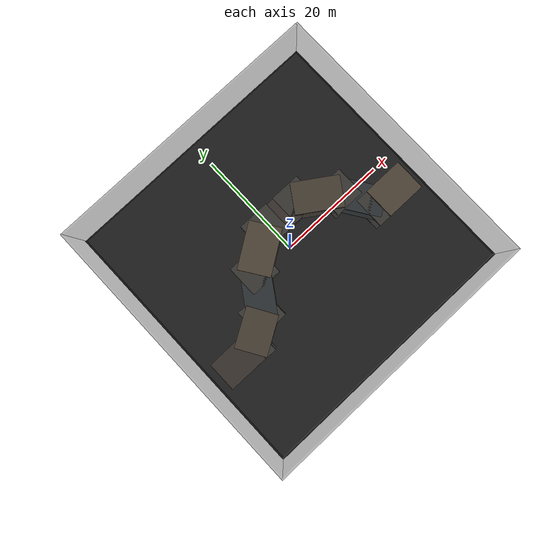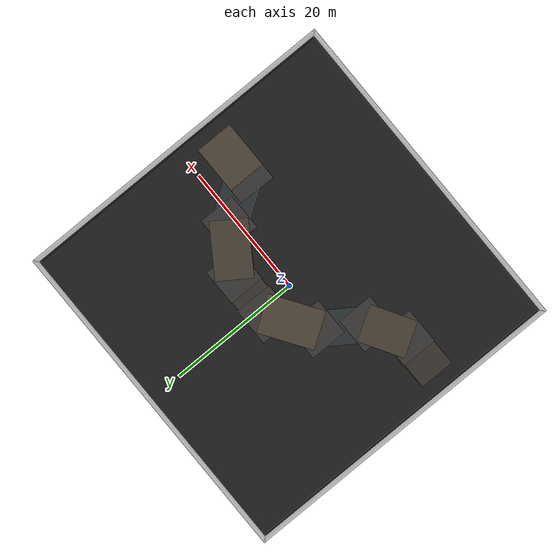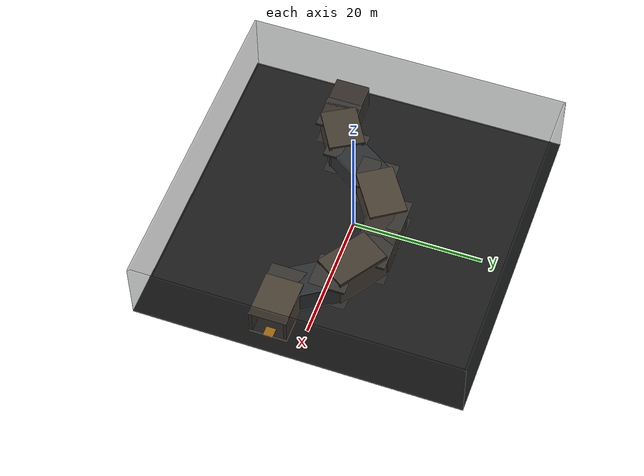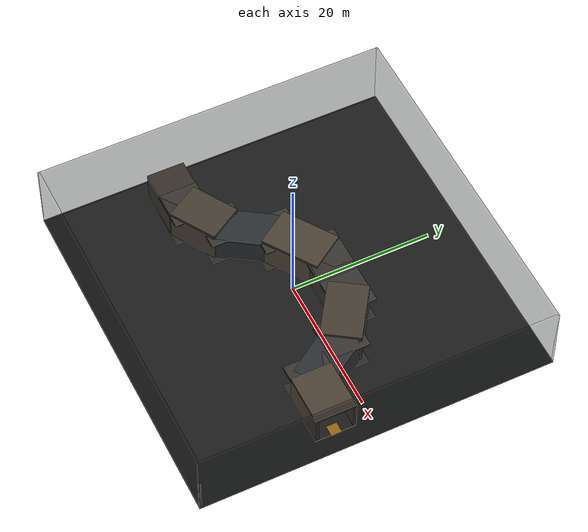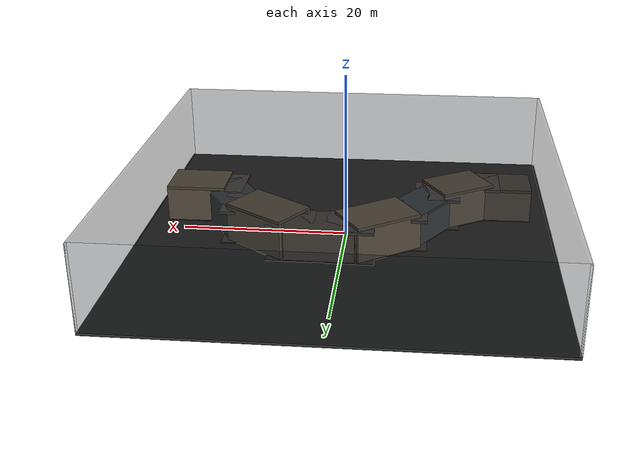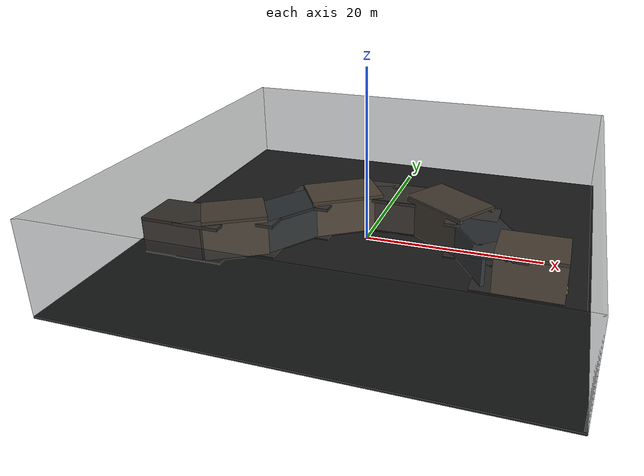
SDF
<?xml version='1.0'?>
<sdf version='1.6'>
  <world name='ego_curved_tunnel_50x50x10'>
    <gravity>0 0 -9.8066</gravity>
    <magnetic_field>6.0e-06 2.3e-05 -4.2e-05</magnetic_field>
    <atmosphere type='adiabatic'/>

    <physics name='px4_ode' default='1' type='ode'>
      <max_step_size>0.004</max_step_size>
      <real_time_factor>1.0</real_time_factor>
      <real_time_update_rate>250</real_time_update_rate>
      <ode>
        <solver><type>quick</type><iters>20</iters><sor>1.3</sor></solver>
        <constraints><cfm>0</cfm><erp>0.2</erp><contact_max_correcting_vel>100</contact_max_correcting_vel></constraints>
      </ode>
    </physics>

    <scene>
      <ambient>0.20 0.20 0.19 1</ambient>
      <background>0.08 0.09 0.10 1</background>
      <shadows>false</shadows>
      <grid>false</grid>
    </scene>

    <spherical_coordinates>
      <surface_model>EARTH_WGS84</surface_model>
      <latitude_deg>47.397742</latitude_deg>
      <longitude_deg>8.545594</longitude_deg>
      <elevation>488.0</elevation>
      <heading_deg>0</heading_deg>
    </spherical_coordinates>

    <include><uri>model://sun</uri></include>

    <model name='map_ground'>
      <static>true</static>
      <pose>0.000 0.000 -0.220 0 0 0</pose>
      <link name='link'>
        <collision name='collision'>
          <geometry><box><size>50.000 50.000 0.200</size></box></geometry>
        </collision>
        <visual name='visual'>
          <geometry><box><size>50.000 50.000 0.200</size></box></geometry>
          <material><ambient>0.100 0.100 0.100 1.000</ambient><diffuse>0.100 0.100 0.100 1.000</diffuse></material>
          <transparency>0.00</transparency>
        </visual>
      </link>
    </model>
    <model name='north_boundary'>
      <static>true</static>
      <pose>0.000 24.850 5.000 0 0 0</pose>
      <link name='link'>
        <collision name='collision'>
          <geometry><box><size>50.000 0.300 10.000</size></box></geometry>
        </collision>
        <visual name='visual'>
          <geometry><box><size>50.000 0.300 10.000</size></box></geometry>
          <material><ambient>0.120 0.130 0.140 1.000</ambient><diffuse>0.120 0.130 0.140 1.000</diffuse></material>
          <transparency>0.65</transparency>
        </visual>
      </link>
    </model>
    <model name='south_boundary'>
      <static>true</static>
      <pose>0.000 -24.850 5.000 0 0 0</pose>
      <link name='link'>
        <collision name='collision'>
          <geometry><box><size>50.000 0.300 10.000</size></box></geometry>
        </collision>
        <visual name='visual'>
          <geometry><box><size>50.000 0.300 10.000</size></box></geometry>
          <material><ambient>0.120 0.130 0.140 1.000</ambient><diffuse>0.120 0.130 0.140 1.000</diffuse></material>
          <transparency>0.65</transparency>
        </visual>
      </link>
    </model>
    <model name='east_boundary'>
      <static>true</static>
      <pose>24.850 0.000 5.000 0 0 0</pose>
      <link name='link'>
        <collision name='collision'>
          <geometry><box><size>0.300 50.000 10.000</size></box></geometry>
        </collision>
        <visual name='visual'>
          <geometry><box><size>0.300 50.000 10.000</size></box></geometry>
          <material><ambient>0.120 0.130 0.140 1.000</ambient><diffuse>0.120 0.130 0.140 1.000</diffuse></material>
          <transparency>0.65</transparency>
        </visual>
      </link>
    </model>
    <model name='west_boundary'>
      <static>true</static>
      <pose>-24.850 0.000 5.000 0 0 0</pose>
      <link name='link'>
        <collision name='collision'>
          <geometry><box><size>0.300 50.000 10.000</size></box></geometry>
        </collision>
        <visual name='visual'>
          <geometry><box><size>0.300 50.000 10.000</size></box></geometry>
          <material><ambient>0.120 0.130 0.140 1.000</ambient><diffuse>0.120 0.130 0.140 1.000</diffuse></material>
          <transparency>0.65</transparency>
        </visual>
      </link>
    </model>
    <model name='tunnel_spawn_pad'>
      <static>true</static>
      <pose>-22.000 -8.000 0.025 0 0 0</pose>
      <link name='link'>
        <collision name='collision'>
          <geometry><box><size>1.500 1.500 0.050</size></box></geometry>
        </collision>
        <visual name='visual'>
          <geometry><box><size>1.500 1.500 0.050</size></box></geometry>
          <material><ambient>0.100 0.340 0.780 1.000</ambient><diffuse>0.100 0.340 0.780 1.000</diffuse></material>
          <transparency>0.00</transparency>
        </visual>
      </link>
    </model>
    <model name='tunnel_goal_pad'>
      <static>true</static>
      <pose>22.000 -5.000 0.025 0 0 0</pose>
      <link name='link'>
        <collision name='collision'>
          <geometry><box><size>1.500 1.500 0.050</size></box></geometry>
        </collision>
        <visual name='visual'>
          <geometry><box><size>1.500 1.500 0.050</size></box></geometry>
          <material><ambient>0.880 0.580 0.080 1.000</ambient><diffuse>0.880 0.580 0.080 1.000</diffuse></material>
          <transparency>0.00</transparency>
        </visual>
      </link>
    </model>
    <model name='junction_01_floor'>
      <static>true</static>
      <pose>-16.000 -8.000 -0.070 0 0 0</pose>
      <link name='link'>
        <collision name='collision'>
          <geometry><box><size>5.500 5.500 0.140</size></box></geometry>
        </collision>
        <visual name='visual'>
          <geometry><box><size>5.500 5.500 0.140</size></box></geometry>
          <material><ambient>0.160 0.150 0.140 1.000</ambient><diffuse>0.160 0.150 0.140 1.000</diffuse></material>
          <transparency>0.00</transparency>
        </visual>
      </link>
    </model>
    <model name='junction_01_ceiling'>
      <static>true</static>
      <pose>-16.000 -8.000 3.975 0 0 0</pose>
      <link name='link'>
        <collision name='collision'>
          <geometry><box><size>5.500 5.500 0.350</size></box></geometry>
        </collision>
        <visual name='visual'>
          <geometry><box><size>5.500 5.500 0.350</size></box></geometry>
          <material><ambient>0.200 0.190 0.180 1.000</ambient><diffuse>0.200 0.190 0.180 1.000</diffuse></material>
          <transparency>0.00</transparency>
        </visual>
      </link>
    </model>
    <model name='junction_02_floor'>
      <static>true</static>
      <pose>-11.000 -5.000 -0.070 0 0 0</pose>
      <link name='link'>
        <collision name='collision'>
          <geometry><box><size>5.500 5.500 0.140</size></box></geometry>
        </collision>
        <visual name='visual'>
          <geometry><box><size>5.500 5.500 0.140</size></box></geometry>
          <material><ambient>0.160 0.150 0.140 1.000</ambient><diffuse>0.160 0.150 0.140 1.000</diffuse></material>
          <transparency>0.00</transparency>
        </visual>
      </link>
    </model>
    <model name='junction_02_ceiling'>
      <static>true</static>
      <pose>-11.000 -5.000 3.675 0 0 0</pose>
      <link name='link'>
        <collision name='collision'>
          <geometry><box><size>5.500 5.500 0.350</size></box></geometry>
        </collision>
        <visual name='visual'>
          <geometry><box><size>5.500 5.500 0.350</size></box></geometry>
          <material><ambient>0.200 0.190 0.180 1.000</ambient><diffuse>0.200 0.190 0.180 1.000</diffuse></material>
          <transparency>0.00</transparency>
        </visual>
      </link>
    </model>
    <model name='junction_03_floor'>
      <static>true</static>
      <pose>-7.000 1.000 -0.070 0 0 0</pose>
      <link name='link'>
        <collision name='collision'>
          <geometry><box><size>5.700 5.700 0.140</size></box></geometry>
        </collision>
        <visual name='visual'>
          <geometry><box><size>5.700 5.700 0.140</size></box></geometry>
          <material><ambient>0.160 0.150 0.140 1.000</ambient><diffuse>0.160 0.150 0.140 1.000</diffuse></material>
          <transparency>0.00</transparency>
        </visual>
      </link>
    </model>
    <model name='junction_03_ceiling'>
      <static>true</static>
      <pose>-7.000 1.000 3.675 0 0 0</pose>
      <link name='link'>
        <collision name='collision'>
          <geometry><box><size>5.700 5.700 0.350</size></box></geometry>
        </collision>
        <visual name='visual'>
          <geometry><box><size>5.700 5.700 0.350</size></box></geometry>
          <material><ambient>0.200 0.190 0.180 1.000</ambient><diffuse>0.200 0.190 0.180 1.000</diffuse></material>
          <transparency>0.00</transparency>
        </visual>
      </link>
    </model>
    <model name='junction_04_floor'>
      <static>true</static>
      <pose>-1.000 5.000 -0.070 0 0 0</pose>
      <link name='link'>
        <collision name='collision'>
          <geometry><box><size>5.700 5.700 0.140</size></box></geometry>
        </collision>
        <visual name='visual'>
          <geometry><box><size>5.700 5.700 0.140</size></box></geometry>
          <material><ambient>0.160 0.150 0.140 1.000</ambient><diffuse>0.160 0.150 0.140 1.000</diffuse></material>
          <transparency>0.00</transparency>
        </visual>
      </link>
    </model>
    <model name='junction_04_ceiling'>
      <static>true</static>
      <pose>-1.000 5.000 3.775 0 0 0</pose>
      <link name='link'>
        <collision name='collision'>
          <geometry><box><size>5.700 5.700 0.350</size></box></geometry>
        </collision>
        <visual name='visual'>
          <geometry><box><size>5.700 5.700 0.350</size></box></geometry>
          <material><ambient>0.200 0.190 0.180 1.000</ambient><diffuse>0.200 0.190 0.180 1.000</diffuse></material>
          <transparency>0.00</transparency>
        </visual>
      </link>
    </model>
    <model name='junction_05_floor'>
      <static>true</static>
      <pose>6.000 5.000 -0.070 0 0 0</pose>
      <link name='link'>
        <collision name='collision'>
          <geometry><box><size>5.500 5.500 0.140</size></box></geometry>
        </collision>
        <visual name='visual'>
          <geometry><box><size>5.500 5.500 0.140</size></box></geometry>
          <material><ambient>0.160 0.150 0.140 1.000</ambient><diffuse>0.160 0.150 0.140 1.000</diffuse></material>
          <transparency>0.00</transparency>
        </visual>
      </link>
    </model>
    <model name='junction_05_ceiling'>
      <static>true</static>
      <pose>6.000 5.000 3.775 0 0 0</pose>
      <link name='link'>
        <collision name='collision'>
          <geometry><box><size>5.500 5.500 0.350</size></box></geometry>
        </collision>
        <visual name='visual'>
          <geometry><box><size>5.500 5.500 0.350</size></box></geometry>
          <material><ambient>0.200 0.190 0.180 1.000</ambient><diffuse>0.200 0.190 0.180 1.000</diffuse></material>
          <transparency>0.00</transparency>
        </visual>
      </link>
    </model>
    <model name='junction_06_floor'>
      <static>true</static>
      <pose>12.000 1.000 -0.070 0 0 0</pose>
      <link name='link'>
        <collision name='collision'>
          <geometry><box><size>5.500 5.500 0.140</size></box></geometry>
        </collision>
        <visual name='visual'>
          <geometry><box><size>5.500 5.500 0.140</size></box></geometry>
          <material><ambient>0.160 0.150 0.140 1.000</ambient><diffuse>0.160 0.150 0.140 1.000</diffuse></material>
          <transparency>0.00</transparency>
        </visual>
      </link>
    </model>
    <model name='junction_06_ceiling'>
      <static>true</static>
      <pose>12.000 1.000 3.875 0 0 0</pose>
      <link name='link'>
        <collision name='collision'>
          <geometry><box><size>5.500 5.500 0.350</size></box></geometry>
        </collision>
        <visual name='visual'>
          <geometry><box><size>5.500 5.500 0.350</size></box></geometry>
          <material><ambient>0.200 0.190 0.180 1.000</ambient><diffuse>0.200 0.190 0.180 1.000</diffuse></material>
          <transparency>0.00</transparency>
        </visual>
      </link>
    </model>
    <model name='junction_07_floor'>
      <static>true</static>
      <pose>16.000 -5.000 -0.070 0 0 0</pose>
      <link name='link'>
        <collision name='collision'>
          <geometry><box><size>5.700 5.700 0.140</size></box></geometry>
        </collision>
        <visual name='visual'>
          <geometry><box><size>5.700 5.700 0.140</size></box></geometry>
          <material><ambient>0.160 0.150 0.140 1.000</ambient><diffuse>0.160 0.150 0.140 1.000</diffuse></material>
          <transparency>0.00</transparency>
        </visual>
      </link>
    </model>
    <model name='junction_07_ceiling'>
      <static>true</static>
      <pose>16.000 -5.000 3.875 0 0 0</pose>
      <link name='link'>
        <collision name='collision'>
          <geometry><box><size>5.700 5.700 0.350</size></box></geometry>
        </collision>
        <visual name='visual'>
          <geometry><box><size>5.700 5.700 0.350</size></box></geometry>
          <material><ambient>0.200 0.190 0.180 1.000</ambient><diffuse>0.200 0.190 0.180 1.000</diffuse></material>
          <transparency>0.00</transparency>
        </visual>
      </link>
    </model>
    <model name='tunnel_segment_01'>
      <static>true</static>
      <pose>-19.000 -8.000 0 0 0 0.000000</pose>
      <link name='tunnel_link'>
        <collision name='floor_collision'>
          <pose>0.000 0.000 -0.070 0 0 0</pose>
          <geometry><box><size>7.200 5.300 0.140</size></box></geometry>
        </collision>
        <visual name='floor_visual'>
          <pose>0.000 0.000 -0.070 0 0 0</pose>
          <geometry><box><size>7.200 5.300 0.140</size></box></geometry>
          <material><ambient>0.160 0.150 0.140 1.000</ambient><diffuse>0.160 0.150 0.140 1.000</diffuse></material>
        </visual>
        <collision name='ceiling_collision'>
          <pose>0.000 0.000 3.975 0 0 0</pose>
          <geometry><box><size>7.200 5.300 0.350</size></box></geometry>
        </collision>
        <visual name='ceiling_visual'>
          <pose>0.000 0.000 3.975 0 0 0</pose>
          <geometry><box><size>7.200 5.300 0.350</size></box></geometry>
          <material><ambient>0.190 0.170 0.150 1.000</ambient><diffuse>0.190 0.170 0.150 1.000</diffuse></material>
        </visual>
        <collision name='left_wall_collision'>
          <pose>0.000 2.425 1.900 0 0 0</pose>
          <geometry><box><size>7.200 0.450 3.800</size></box></geometry>
        </collision>
        <visual name='left_wall_visual'>
          <pose>0.000 2.425 1.900 0 0 0</pose>
          <geometry><box><size>7.200 0.450 3.800</size></box></geometry>
          <material><ambient>0.240 0.220 0.200 1.000</ambient><diffuse>0.240 0.220 0.200 1.000</diffuse></material>
        </visual>
        <collision name='right_wall_collision'>
          <pose>0.000 -2.425 1.900 0 0 0</pose>
          <geometry><box><size>7.200 0.450 3.800</size></box></geometry>
        </collision>
        <visual name='right_wall_visual'>
          <pose>0.000 -2.425 1.900 0 0 0</pose>
          <geometry><box><size>7.200 0.450 3.800</size></box></geometry>
          <material><ambient>0.240 0.220 0.200 1.000</ambient><diffuse>0.240 0.220 0.200 1.000</diffuse></material>
        </visual>
        <collision name='wall_protrusion_collision'>
          <pose>-0.400 1.950 1.150 0 0 0</pose>
          <geometry><box><size>1.500 0.500 2.300</size></box></geometry>
        </collision>
        <visual name='wall_protrusion_visual'>
          <pose>-0.400 1.950 1.150 0 0 0</pose>
          <geometry><box><size>1.500 0.500 2.300</size></box></geometry>
          <material><ambient>0.240 0.220 0.200 1.000</ambient><diffuse>0.240 0.220 0.200 1.000</diffuse></material>
        </visual>
      </link>
    </model>
    <model name='tunnel_segment_02'>
      <static>true</static>
      <pose>-13.500 -6.500 0 0 0 0.540420</pose>
      <link name='tunnel_link'>
        <collision name='floor_collision'>
          <pose>0.000 0.000 -0.070 0 0 0</pose>
          <geometry><box><size>7.031 5.500 0.140</size></box></geometry>
        </collision>
        <visual name='floor_visual'>
          <pose>0.000 0.000 -0.070 0 0 0</pose>
          <geometry><box><size>7.031 5.500 0.140</size></box></geometry>
          <material><ambient>0.160 0.150 0.140 1.000</ambient><diffuse>0.160 0.150 0.140 1.000</diffuse></material>
        </visual>
        <collision name='ceiling_collision'>
          <pose>0.000 0.000 4.375 0 0 0</pose>
          <geometry><box><size>7.031 5.500 0.350</size></box></geometry>
        </collision>
        <visual name='ceiling_visual'>
          <pose>0.000 0.000 4.375 0 0 0</pose>
          <geometry><box><size>7.031 5.500 0.350</size></box></geometry>
          <material><ambient>0.250 0.220 0.180 1.000</ambient><diffuse>0.250 0.220 0.180 1.000</diffuse></material>
        </visual>
        <collision name='left_wall_collision'>
          <pose>0.000 2.525 2.100 0 0 0</pose>
          <geometry><box><size>7.031 0.450 4.200</size></box></geometry>
        </collision>
        <visual name='left_wall_visual'>
          <pose>0.000 2.525 2.100 0 0 0</pose>
          <geometry><box><size>7.031 0.450 4.200</size></box></geometry>
          <material><ambient>0.300 0.270 0.230 1.000</ambient><diffuse>0.300 0.270 0.230 1.000</diffuse></material>
        </visual>
        <collision name='right_wall_collision'>
          <pose>0.000 -2.525 2.100 0 0 0</pose>
          <geometry><box><size>7.031 0.450 4.200</size></box></geometry>
        </collision>
        <visual name='right_wall_visual'>
          <pose>0.000 -2.525 2.100 0 0 0</pose>
          <geometry><box><size>7.031 0.450 4.200</size></box></geometry>
          <material><ambient>0.300 0.270 0.230 1.000</ambient><diffuse>0.300 0.270 0.230 1.000</diffuse></material>
        </visual>
        <collision name='ceiling_drop_collision'>
          <pose>0.350 0.000 3.975 0 0 0</pose>
          <geometry><box><size>1.200 4.600 0.450</size></box></geometry>
        </collision>
        <visual name='ceiling_drop_visual'>
          <pose>0.350 0.000 3.975 0 0 0</pose>
          <geometry><box><size>1.200 4.600 0.450</size></box></geometry>
          <material><ambient>0.250 0.220 0.180 1.000</ambient><diffuse>0.250 0.220 0.180 1.000</diffuse></material>
        </visual>
      </link>
    </model>
    <model name='tunnel_segment_03'>
      <static>true</static>
      <pose>-9.000 -2.000 0 0 0 0.982794</pose>
      <link name='tunnel_link'>
        <collision name='floor_collision'>
          <pose>0.000 0.000 -0.070 0 0 0</pose>
          <geometry><box><size>8.411 5.100 0.140</size></box></geometry>
        </collision>
        <visual name='floor_visual'>
          <pose>0.000 0.000 -0.070 0 0 0</pose>
          <geometry><box><size>8.411 5.100 0.140</size></box></geometry>
          <material><ambient>0.160 0.150 0.140 1.000</ambient><diffuse>0.160 0.150 0.140 1.000</diffuse></material>
        </visual>
        <collision name='ceiling_collision'>
          <pose>0.000 0.000 3.675 0 0 0</pose>
          <geometry><box><size>8.411 5.100 0.350</size></box></geometry>
        </collision>
        <visual name='ceiling_visual'>
          <pose>0.000 0.000 3.675 0 0 0</pose>
          <geometry><box><size>8.411 5.100 0.350</size></box></geometry>
          <material><ambient>0.150 0.170 0.180 1.000</ambient><diffuse>0.150 0.170 0.180 1.000</diffuse></material>
        </visual>
        <collision name='left_wall_collision'>
          <pose>0.000 2.325 1.750 0 0 0</pose>
          <geometry><box><size>8.411 0.450 3.500</size></box></geometry>
        </collision>
        <visual name='left_wall_visual'>
          <pose>0.000 2.325 1.750 0 0 0</pose>
          <geometry><box><size>8.411 0.450 3.500</size></box></geometry>
          <material><ambient>0.200 0.220 0.230 1.000</ambient><diffuse>0.200 0.220 0.230 1.000</diffuse></material>
        </visual>
        <collision name='right_wall_collision'>
          <pose>0.000 -2.325 1.750 0 0 0</pose>
          <geometry><box><size>8.411 0.450 3.500</size></box></geometry>
        </collision>
        <visual name='right_wall_visual'>
          <pose>0.000 -2.325 1.750 0 0 0</pose>
          <geometry><box><size>8.411 0.450 3.500</size></box></geometry>
          <material><ambient>0.200 0.220 0.230 1.000</ambient><diffuse>0.200 0.220 0.230 1.000</diffuse></material>
        </visual>
        <collision name='wall_protrusion_collision'>
          <pose>-0.400 -1.850 1.150 0 0 0</pose>
          <geometry><box><size>1.500 0.500 2.300</size></box></geometry>
        </collision>
        <visual name='wall_protrusion_visual'>
          <pose>-0.400 -1.850 1.150 0 0 0</pose>
          <geometry><box><size>1.500 0.500 2.300</size></box></geometry>
          <material><ambient>0.200 0.220 0.230 1.000</ambient><diffuse>0.200 0.220 0.230 1.000</diffuse></material>
        </visual>
      </link>
    </model>
    <model name='tunnel_segment_04'>
      <static>true</static>
      <pose>-4.000 3.000 0 0 0 0.588003</pose>
      <link name='tunnel_link'>
        <collision name='floor_collision'>
          <pose>0.000 0.000 -0.070 0 0 0</pose>
          <geometry><box><size>8.411 5.700 0.140</size></box></geometry>
        </collision>
        <visual name='floor_visual'>
          <pose>0.000 0.000 -0.070 0 0 0</pose>
          <geometry><box><size>8.411 5.700 0.140</size></box></geometry>
          <material><ambient>0.160 0.150 0.140 1.000</ambient><diffuse>0.160 0.150 0.140 1.000</diffuse></material>
        </visual>
        <collision name='ceiling_collision'>
          <pose>0.000 0.000 4.175 0 0 0</pose>
          <geometry><box><size>8.411 5.700 0.350</size></box></geometry>
        </collision>
        <visual name='ceiling_visual'>
          <pose>0.000 0.000 4.175 0 0 0</pose>
          <geometry><box><size>8.411 5.700 0.350</size></box></geometry>
          <material><ambient>0.280 0.240 0.190 1.000</ambient><diffuse>0.280 0.240 0.190 1.000</diffuse></material>
        </visual>
        <collision name='left_wall_collision'>
          <pose>0.000 2.625 2.000 0 0 0</pose>
          <geometry><box><size>8.411 0.450 4.000</size></box></geometry>
        </collision>
        <visual name='left_wall_visual'>
          <pose>0.000 2.625 2.000 0 0 0</pose>
          <geometry><box><size>8.411 0.450 4.000</size></box></geometry>
          <material><ambient>0.330 0.290 0.240 1.000</ambient><diffuse>0.330 0.290 0.240 1.000</diffuse></material>
        </visual>
        <collision name='right_wall_collision'>
          <pose>0.000 -2.625 2.000 0 0 0</pose>
          <geometry><box><size>8.411 0.450 4.000</size></box></geometry>
        </collision>
        <visual name='right_wall_visual'>
          <pose>0.000 -2.625 2.000 0 0 0</pose>
          <geometry><box><size>8.411 0.450 4.000</size></box></geometry>
          <material><ambient>0.330 0.290 0.240 1.000</ambient><diffuse>0.330 0.290 0.240 1.000</diffuse></material>
        </visual>
        <collision name='ceiling_drop_collision'>
          <pose>0.350 0.000 3.775 0 0 0</pose>
          <geometry><box><size>1.200 4.800 0.450</size></box></geometry>
        </collision>
        <visual name='ceiling_drop_visual'>
          <pose>0.350 0.000 3.775 0 0 0</pose>
          <geometry><box><size>1.200 4.800 0.450</size></box></geometry>
          <material><ambient>0.280 0.240 0.190 1.000</ambient><diffuse>0.280 0.240 0.190 1.000</diffuse></material>
        </visual>
      </link>
    </model>
    <model name='tunnel_segment_05'>
      <static>true</static>
      <pose>2.500 5.000 0 0 0 0.000000</pose>
      <link name='tunnel_link'>
        <collision name='floor_collision'>
          <pose>0.000 0.000 -0.070 0 0 0</pose>
          <geometry><box><size>8.200 5.300 0.140</size></box></geometry>
        </collision>
        <visual name='floor_visual'>
          <pose>0.000 0.000 -0.070 0 0 0</pose>
          <geometry><box><size>8.200 5.300 0.140</size></box></geometry>
          <material><ambient>0.160 0.150 0.140 1.000</ambient><diffuse>0.160 0.150 0.140 1.000</diffuse></material>
        </visual>
        <collision name='ceiling_collision'>
          <pose>0.000 0.000 3.775 0 0 0</pose>
          <geometry><box><size>8.200 5.300 0.350</size></box></geometry>
        </collision>
        <visual name='ceiling_visual'>
          <pose>0.000 0.000 3.775 0 0 0</pose>
          <geometry><box><size>8.200 5.300 0.350</size></box></geometry>
          <material><ambient>0.190 0.170 0.150 1.000</ambient><diffuse>0.190 0.170 0.150 1.000</diffuse></material>
        </visual>
        <collision name='left_wall_collision'>
          <pose>0.000 2.425 1.800 0 0 0</pose>
          <geometry><box><size>8.200 0.450 3.600</size></box></geometry>
        </collision>
        <visual name='left_wall_visual'>
          <pose>0.000 2.425 1.800 0 0 0</pose>
          <geometry><box><size>8.200 0.450 3.600</size></box></geometry>
          <material><ambient>0.240 0.220 0.200 1.000</ambient><diffuse>0.240 0.220 0.200 1.000</diffuse></material>
        </visual>
        <collision name='right_wall_collision'>
          <pose>0.000 -2.425 1.800 0 0 0</pose>
          <geometry><box><size>8.200 0.450 3.600</size></box></geometry>
        </collision>
        <visual name='right_wall_visual'>
          <pose>0.000 -2.425 1.800 0 0 0</pose>
          <geometry><box><size>8.200 0.450 3.600</size></box></geometry>
          <material><ambient>0.240 0.220 0.200 1.000</ambient><diffuse>0.240 0.220 0.200 1.000</diffuse></material>
        </visual>
        <collision name='wall_protrusion_collision'>
          <pose>-0.400 1.950 1.150 0 0 0</pose>
          <geometry><box><size>1.500 0.500 2.300</size></box></geometry>
        </collision>
        <visual name='wall_protrusion_visual'>
          <pose>-0.400 1.950 1.150 0 0 0</pose>
          <geometry><box><size>1.500 0.500 2.300</size></box></geometry>
          <material><ambient>0.240 0.220 0.200 1.000</ambient><diffuse>0.240 0.220 0.200 1.000</diffuse></material>
        </visual>
      </link>
    </model>
    <model name='tunnel_segment_06'>
      <static>true</static>
      <pose>9.000 3.000 0 0 0 -0.588003</pose>
      <link name='tunnel_link'>
        <collision name='floor_collision'>
          <pose>0.000 0.000 -0.070 0 0 0</pose>
          <geometry><box><size>8.411 5.500 0.140</size></box></geometry>
        </collision>
        <visual name='floor_visual'>
          <pose>0.000 0.000 -0.070 0 0 0</pose>
          <geometry><box><size>8.411 5.500 0.140</size></box></geometry>
          <material><ambient>0.160 0.150 0.140 1.000</ambient><diffuse>0.160 0.150 0.140 1.000</diffuse></material>
        </visual>
        <collision name='ceiling_collision'>
          <pose>0.000 0.000 4.575 0 0 0</pose>
          <geometry><box><size>8.411 5.500 0.350</size></box></geometry>
        </collision>
        <visual name='ceiling_visual'>
          <pose>0.000 0.000 4.575 0 0 0</pose>
          <geometry><box><size>8.411 5.500 0.350</size></box></geometry>
          <material><ambient>0.250 0.220 0.180 1.000</ambient><diffuse>0.250 0.220 0.180 1.000</diffuse></material>
        </visual>
        <collision name='left_wall_collision'>
          <pose>0.000 2.525 2.200 0 0 0</pose>
          <geometry><box><size>8.411 0.450 4.400</size></box></geometry>
        </collision>
        <visual name='left_wall_visual'>
          <pose>0.000 2.525 2.200 0 0 0</pose>
          <geometry><box><size>8.411 0.450 4.400</size></box></geometry>
          <material><ambient>0.300 0.270 0.230 1.000</ambient><diffuse>0.300 0.270 0.230 1.000</diffuse></material>
        </visual>
        <collision name='right_wall_collision'>
          <pose>0.000 -2.525 2.200 0 0 0</pose>
          <geometry><box><size>8.411 0.450 4.400</size></box></geometry>
        </collision>
        <visual name='right_wall_visual'>
          <pose>0.000 -2.525 2.200 0 0 0</pose>
          <geometry><box><size>8.411 0.450 4.400</size></box></geometry>
          <material><ambient>0.300 0.270 0.230 1.000</ambient><diffuse>0.300 0.270 0.230 1.000</diffuse></material>
        </visual>
        <collision name='ceiling_drop_collision'>
          <pose>0.350 0.000 4.175 0 0 0</pose>
          <geometry><box><size>1.200 4.600 0.450</size></box></geometry>
        </collision>
        <visual name='ceiling_drop_visual'>
          <pose>0.350 0.000 4.175 0 0 0</pose>
          <geometry><box><size>1.200 4.600 0.450</size></box></geometry>
          <material><ambient>0.250 0.220 0.180 1.000</ambient><diffuse>0.250 0.220 0.180 1.000</diffuse></material>
        </visual>
      </link>
    </model>
    <model name='tunnel_segment_07'>
      <static>true</static>
      <pose>14.000 -2.000 0 0 0 -0.982794</pose>
      <link name='tunnel_link'>
        <collision name='floor_collision'>
          <pose>0.000 0.000 -0.070 0 0 0</pose>
          <geometry><box><size>8.411 5.100 0.140</size></box></geometry>
        </collision>
        <visual name='floor_visual'>
          <pose>0.000 0.000 -0.070 0 0 0</pose>
          <geometry><box><size>8.411 5.100 0.140</size></box></geometry>
          <material><ambient>0.160 0.150 0.140 1.000</ambient><diffuse>0.160 0.150 0.140 1.000</diffuse></material>
        </visual>
        <collision name='ceiling_collision'>
          <pose>0.000 0.000 3.875 0 0 0</pose>
          <geometry><box><size>8.411 5.100 0.350</size></box></geometry>
        </collision>
        <visual name='ceiling_visual'>
          <pose>0.000 0.000 3.875 0 0 0</pose>
          <geometry><box><size>8.411 5.100 0.350</size></box></geometry>
          <material><ambient>0.150 0.170 0.180 1.000</ambient><diffuse>0.150 0.170 0.180 1.000</diffuse></material>
        </visual>
        <collision name='left_wall_collision'>
          <pose>0.000 2.325 1.850 0 0 0</pose>
          <geometry><box><size>8.411 0.450 3.700</size></box></geometry>
        </collision>
        <visual name='left_wall_visual'>
          <pose>0.000 2.325 1.850 0 0 0</pose>
          <geometry><box><size>8.411 0.450 3.700</size></box></geometry>
          <material><ambient>0.200 0.220 0.230 1.000</ambient><diffuse>0.200 0.220 0.230 1.000</diffuse></material>
        </visual>
        <collision name='right_wall_collision'>
          <pose>0.000 -2.325 1.850 0 0 0</pose>
          <geometry><box><size>8.411 0.450 3.700</size></box></geometry>
        </collision>
        <visual name='right_wall_visual'>
          <pose>0.000 -2.325 1.850 0 0 0</pose>
          <geometry><box><size>8.411 0.450 3.700</size></box></geometry>
          <material><ambient>0.200 0.220 0.230 1.000</ambient><diffuse>0.200 0.220 0.230 1.000</diffuse></material>
        </visual>
        <collision name='wall_protrusion_collision'>
          <pose>-0.400 -1.850 1.150 0 0 0</pose>
          <geometry><box><size>1.500 0.500 2.300</size></box></geometry>
        </collision>
        <visual name='wall_protrusion_visual'>
          <pose>-0.400 -1.850 1.150 0 0 0</pose>
          <geometry><box><size>1.500 0.500 2.300</size></box></geometry>
          <material><ambient>0.200 0.220 0.230 1.000</ambient><diffuse>0.200 0.220 0.230 1.000</diffuse></material>
        </visual>
      </link>
    </model>
    <model name='tunnel_segment_08'>
      <static>true</static>
      <pose>19.000 -5.000 0 0 0 0.000000</pose>
      <link name='tunnel_link'>
        <collision name='floor_collision'>
          <pose>0.000 0.000 -0.070 0 0 0</pose>
          <geometry><box><size>7.200 5.700 0.140</size></box></geometry>
        </collision>
        <visual name='floor_visual'>
          <pose>0.000 0.000 -0.070 0 0 0</pose>
          <geometry><box><size>7.200 5.700 0.140</size></box></geometry>
          <material><ambient>0.160 0.150 0.140 1.000</ambient><diffuse>0.160 0.150 0.140 1.000</diffuse></material>
        </visual>
        <collision name='ceiling_collision'>
          <pose>0.000 0.000 4.275 0 0 0</pose>
          <geometry><box><size>7.200 5.700 0.350</size></box></geometry>
        </collision>
        <visual name='ceiling_visual'>
          <pose>0.000 0.000 4.275 0 0 0</pose>
          <geometry><box><size>7.200 5.700 0.350</size></box></geometry>
          <material><ambient>0.280 0.240 0.190 1.000</ambient><diffuse>0.280 0.240 0.190 1.000</diffuse></material>
        </visual>
        <collision name='left_wall_collision'>
          <pose>0.000 2.625 2.050 0 0 0</pose>
          <geometry><box><size>7.200 0.450 4.100</size></box></geometry>
        </collision>
        <visual name='left_wall_visual'>
          <pose>0.000 2.625 2.050 0 0 0</pose>
          <geometry><box><size>7.200 0.450 4.100</size></box></geometry>
          <material><ambient>0.330 0.290 0.240 1.000</ambient><diffuse>0.330 0.290 0.240 1.000</diffuse></material>
        </visual>
        <collision name='right_wall_collision'>
          <pose>0.000 -2.625 2.050 0 0 0</pose>
          <geometry><box><size>7.200 0.450 4.100</size></box></geometry>
        </collision>
        <visual name='right_wall_visual'>
          <pose>0.000 -2.625 2.050 0 0 0</pose>
          <geometry><box><size>7.200 0.450 4.100</size></box></geometry>
          <material><ambient>0.330 0.290 0.240 1.000</ambient><diffuse>0.330 0.290 0.240 1.000</diffuse></material>
        </visual>
        <collision name='ceiling_drop_collision'>
          <pose>0.350 0.000 3.875 0 0 0</pose>
          <geometry><box><size>1.200 4.800 0.450</size></box></geometry>
        </collision>
        <visual name='ceiling_drop_visual'>
          <pose>0.350 0.000 3.875 0 0 0</pose>
          <geometry><box><size>1.200 4.800 0.450</size></box></geometry>
          <material><ambient>0.280 0.240 0.190 1.000</ambient><diffuse>0.280 0.240 0.190 1.000</diffuse></material>
        </visual>
      </link>
    </model>
  </world>
</sdf>
